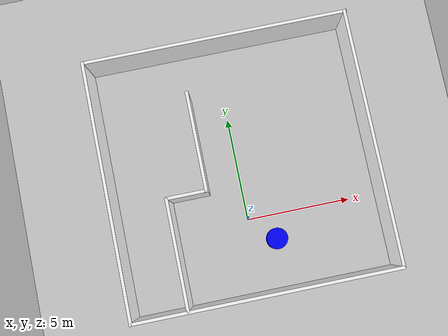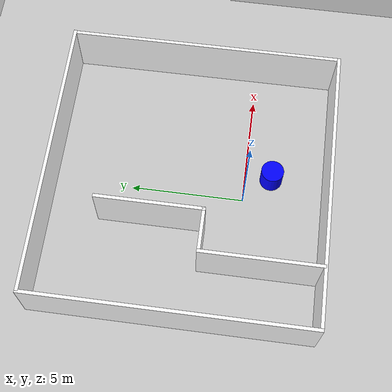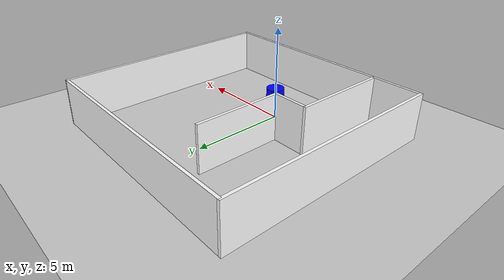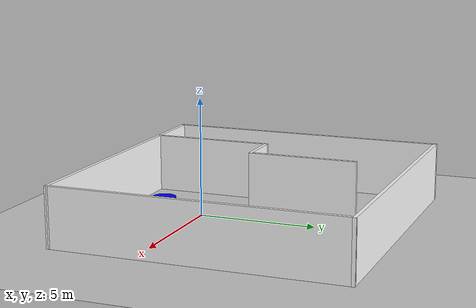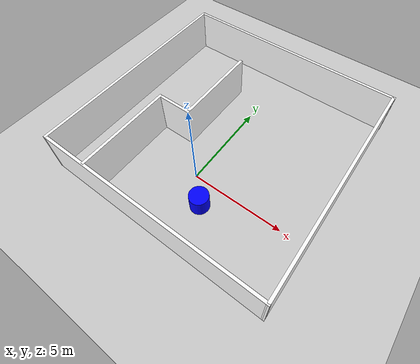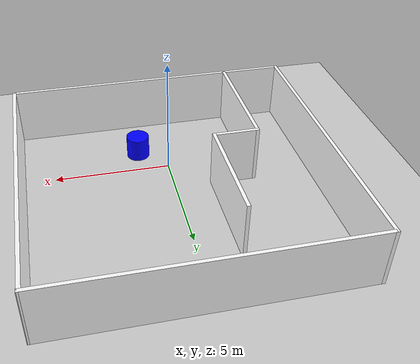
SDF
<sdf version='1.10'>
  <world name='default'>

    <physics name='1ms' type='ignored'>
      <max_step_size>0.001</max_step_size>
      <real_time_factor>1</real_time_factor>
      <real_time_update_rate>1000</real_time_update_rate>
    </physics>

    <plugin name='gz::sim::systems::Physics' filename='gz-sim-physics-system'/>
    <plugin name='gz::sim::systems::UserCommands' filename='gz-sim-user-commands-system'/>
    <plugin name='gz::sim::systems::SceneBroadcaster' filename='gz-sim-scene-broadcaster-system'/>
    <plugin name='gz::sim::systems::Contact' filename='gz-sim-contact-system'/>

    <gravity>0 0 -9.8</gravity>
    <magnetic_field>6e-06 2.3e-05 -4.2e-05</magnetic_field>
    <atmosphere type='adiabatic'/>

    <scene>
      <ambient>0.4 0.4 0.4 1</ambient>
      <background>0.7 0.7 0.7 1</background>
      <shadows>true</shadows>
    </scene>

    <model name='ground_plane'>
      <static>true</static>
      <link name='link'>
        <collision name='collision'>
          <geometry>
            <plane>
              <normal>0 0 1</normal>
              <size>100 100</size>
            </plane>
          </geometry>
        </collision>
        <visual name='visual'>
          <geometry>
            <plane>
              <normal>0 0 1</normal>
              <size>100 100</size>
            </plane>
          </geometry>
          <material>
            <ambient>0.8 0.8 0.8 1</ambient>
            <diffuse>0.8 0.8 0.8 1</diffuse>
            <specular>0.8 0.8 0.8 1</specular>
          </material>
        </visual>
      </link>
    </model>

    <model name='simple_world_walls'>
      <static>true</static>
      <pose>0.218703 2.48564 0 0 0 0</pose>

      <link name='Wall_11'>
        <pose>-3.69115 -3.43491 1.25 0 0 1.5708</pose>
        <collision name='collision'>
          <geometry>
            <box>
              <size>5.25 0.15 2.5</size>
            </box>
          </geometry>
        </collision>
        <visual name='visual'>
          <geometry>
            <box>
              <size>5.25 0.15 2.5</size>
            </box>
          </geometry>
          <material>
            <ambient>1 1 1 1</ambient>
            <diffuse>1 1 1 1</diffuse>
          </material>
        </visual>
      </link>

      <link name='Wall_12'>
        <pose>-2.76615 -0.884914 1.25 0 0 0</pose>
        <collision name='collision'>
          <geometry>
            <box>
              <size>2 0.15 2.5</size>
            </box>
          </geometry>
        </collision>
        <visual name='visual'>
          <geometry>
            <box>
              <size>2 0.15 2.5</size>
            </box>
          </geometry>
          <material>
            <ambient>1 1 1 1</ambient>
            <diffuse>1 1 1 1</diffuse>
          </material>
        </visual>
      </link>

      <link name='Wall_13'>
        <pose>-1.84115 1.41509 1.25 0 0 1.5708</pose>
        <collision name='collision'>
          <geometry>
            <box>
              <size>4.75 0.15 2.5</size>
            </box>
          </geometry>
        </collision>
        <visual name='visual'>
          <geometry>
            <box>
              <size>4.75 0.15 2.5</size>
            </box>
          </geometry>
          <material>
            <ambient>1 1 1 1</ambient>
            <diffuse>1 1 1 1</diffuse>
          </material>
        </visual>
      </link>

      <link name='Wall_3'>
        <pose>-0.020767 -6.05025 1.25 0 0 0</pose>
        <collision name='collision'>
          <geometry>
            <box>
              <size>12.5 0.15 2.5</size>
            </box>
          </geometry>
        </collision>
        <visual name='visual'>
          <geometry>
            <box>
              <size>12.5 0.15 2.5</size>
            </box>
          </geometry>
          <material>
            <ambient>1 1 1 1</ambient>
            <diffuse>1 1 1 1</diffuse>
          </material>
        </visual>
      </link>

      <link name='Wall_4'>
        <pose>6.1311 -0.000247 1.25 0 0 1.57462</pose>
        <collision name='collision'>
          <geometry>
            <box>
              <size>12.25 0.15 2.5</size>
            </box>
          </geometry>
        </collision>
        <visual name='visual'>
          <geometry>
            <box>
              <size>12.25 0.15 2.5</size>
            </box>
          </geometry>
          <material>
            <ambient>1 1 1 1</ambient>
            <diffuse>1 1 1 1</diffuse>
          </material>
        </visual>
      </link>

      <link name='Wall_5'>
        <pose>-0.043898 6.04975 1.25 0 0 3.14159</pose>
        <collision name='collision'>
          <geometry>
            <box>
              <size>12.5 0.15 2.5</size>
            </box>
          </geometry>
        </collision>
        <visual name='visual'>
          <geometry>
            <box>
              <size>12.5 0.15 2.5</size>
            </box>
          </geometry>
          <material>
            <ambient>1 1 1 1</ambient>
            <diffuse>1 1 1 1</diffuse>
          </material>
        </visual>
      </link>

      <link name='Wall_9'>
        <pose>-6.30137 0.000487 1.25 0 0 1.5708</pose>
        <collision name='collision'>
          <geometry>
            <box>
              <size>12.25 0.15 2.5</size>
            </box>
          </geometry>
        </collision>
        <visual name='visual'>
          <geometry>
            <box>
              <size>12.25 0.15 2.5</size>
            </box>
          </geometry>
          <material>
            <ambient>1 1 1 1</ambient>
            <diffuse>1 1 1 1</diffuse>
          </material>
        </visual>
      </link>
    </model>

    <model name='cylinder_obstacles'>
      <static>false</static>
      <link name='cylinder_1'>
        <pose>1.17 -1.16 0.5 0 0 0</pose>
        <collision name='collision'>
          <geometry>
            <cylinder>
              <radius>0.5</radius>
              <length>1</length>
            </cylinder>
          </geometry>
        </collision>
        <visual name='visual'>
          <geometry>
            <cylinder>
              <radius>0.5</radius>
              <length>1</length>
            </cylinder>
          </geometry>
          <material>
            <ambient>0 0 1 1</ambient>
            <diffuse>0 0 1 1</diffuse>
          </material>
        </visual>
      </link>
    </model>

    <light name='sun' type='directional'>
      <pose>0 0 10 0 0 0</pose>
      <cast_shadows>true</cast_shadows>
      <direction>-0.5 0.1 -0.9</direction>
      <diffuse>0.8 0.8 0.8 1</diffuse>
      <specular>0.2 0.2 0.2 1</specular>
    </light>
  </world>
</sdf>
